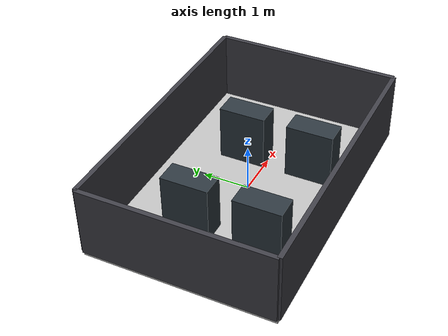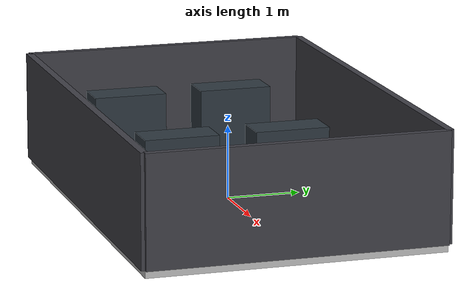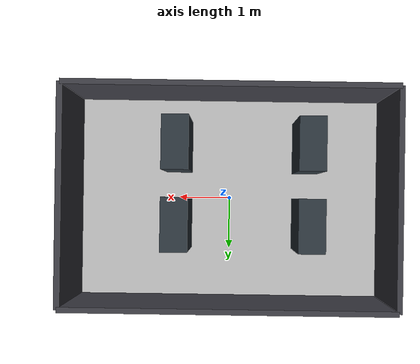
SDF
<?xml version='1.0' encoding='utf-8'?>
<sdf version="1.9">
  <world name="basic_warehouse">
    <gravity>0 0 -9.8</gravity>
    <light name="sun" type="directional">
      <pose>0 0 10 0 0 0</pose>
      <diffuse>0.8 0.8 0.8 1</diffuse>
      <direction>-0.5 0.2 -1</direction>
    </light>
    <model name="floor">
      <static>true</static>
      <pose>0 0 -0.05 0 0 0</pose>
      <link name="link">
        <collision name="collision">
          <geometry>
            <box>
              <size>6.0 4.0 0.1</size>
            </box>
          </geometry>
        </collision>
        <visual name="visual">
          <geometry>
            <box>
              <size>6.0 4.0 0.1</size>
            </box>
          </geometry>
          <material>
            <ambient>0.75 0.75 0.75 1</ambient>
            <diffuse>0.75 0.75 0.75 1</diffuse>
          </material>
        </visual>
      </link>
    </model>
    <model name="north_wall">
      <static>true</static>
      <pose>0 2.0 0.75 0 0 0</pose>
      <link name="link">
        <collision name="collision">
          <geometry>
            <box>
              <size>6.0 0.1 1.5</size>
            </box>
          </geometry>
        </collision>
        <visual name="visual">
          <geometry>
            <box>
              <size>6.0 0.1 1.5</size>
            </box>
          </geometry>
          <material>
            <ambient>0.25 0.25 0.28 1</ambient>
            <diffuse>0.25 0.25 0.28 1</diffuse>
          </material>
        </visual>
      </link>
    </model>
    <model name="south_wall">
      <static>true</static>
      <pose>0 -2.0 0.75 0 0 0</pose>
      <link name="link">
        <collision name="collision">
          <geometry>
            <box>
              <size>6.0 0.1 1.5</size>
            </box>
          </geometry>
        </collision>
        <visual name="visual">
          <geometry>
            <box>
              <size>6.0 0.1 1.5</size>
            </box>
          </geometry>
          <material>
            <ambient>0.25 0.25 0.28 1</ambient>
            <diffuse>0.25 0.25 0.28 1</diffuse>
          </material>
        </visual>
      </link>
    </model>
    <model name="east_wall">
      <static>true</static>
      <pose>3.0 0 0.75 0 0 0</pose>
      <link name="link">
        <collision name="collision">
          <geometry>
            <box>
              <size>0.1 4.0 1.5</size>
            </box>
          </geometry>
        </collision>
        <visual name="visual">
          <geometry>
            <box>
              <size>0.1 4.0 1.5</size>
            </box>
          </geometry>
          <material>
            <ambient>0.25 0.25 0.28 1</ambient>
            <diffuse>0.25 0.25 0.28 1</diffuse>
          </material>
        </visual>
      </link>
    </model>
    <model name="west_wall">
      <static>true</static>
      <pose>-3.0 0 0.75 0 0 0</pose>
      <link name="link">
        <collision name="collision">
          <geometry>
            <box>
              <size>0.1 4.0 1.5</size>
            </box>
          </geometry>
        </collision>
        <visual name="visual">
          <geometry>
            <box>
              <size>0.1 4.0 1.5</size>
            </box>
          </geometry>
          <material>
            <ambient>0.25 0.25 0.28 1</ambient>
            <diffuse>0.25 0.25 0.28 1</diffuse>
          </material>
        </visual>
      </link>
    </model>
    <model name="shelf_A1">
      <static>true</static>
      <pose>-1.5 -1.0 0.6 0 0 0.0</pose>
      <link name="link">
        <collision name="collision">
          <geometry>
            <box>
              <size>0.5 1.0 1.2</size>
            </box>
          </geometry>
        </collision>
        <visual name="visual">
          <geometry>
            <box>
              <size>0.5 1.0 1.2</size>
            </box>
          </geometry>
          <material>
            <ambient>0.18 0.22 0.25 1</ambient>
            <diffuse>0.18 0.22 0.25 1</diffuse>
          </material>
        </visual>
      </link>
    </model>
    <model name="shelf_A2">
      <static>true</static>
      <pose>-1.5 0.5 0.6 0 0 0.0</pose>
      <link name="link">
        <collision name="collision">
          <geometry>
            <box>
              <size>0.5 1.0 1.2</size>
            </box>
          </geometry>
        </collision>
        <visual name="visual">
          <geometry>
            <box>
              <size>0.5 1.0 1.2</size>
            </box>
          </geometry>
          <material>
            <ambient>0.18 0.22 0.25 1</ambient>
            <diffuse>0.18 0.22 0.25 1</diffuse>
          </material>
        </visual>
      </link>
    </model>
    <model name="shelf_B1">
      <static>true</static>
      <pose>1.0 -1.0 0.6 0 0 3.14</pose>
      <link name="link">
        <collision name="collision">
          <geometry>
            <box>
              <size>0.5 1.0 1.2</size>
            </box>
          </geometry>
        </collision>
        <visual name="visual">
          <geometry>
            <box>
              <size>0.5 1.0 1.2</size>
            </box>
          </geometry>
          <material>
            <ambient>0.18 0.22 0.25 1</ambient>
            <diffuse>0.18 0.22 0.25 1</diffuse>
          </material>
        </visual>
      </link>
    </model>
    <model name="shelf_B2">
      <static>true</static>
      <pose>1.0 0.5 0.6 0 0 3.14</pose>
      <link name="link">
        <collision name="collision">
          <geometry>
            <box>
              <size>0.5 1.0 1.2</size>
            </box>
          </geometry>
        </collision>
        <visual name="visual">
          <geometry>
            <box>
              <size>0.5 1.0 1.2</size>
            </box>
          </geometry>
          <material>
            <ambient>0.18 0.22 0.25 1</ambient>
            <diffuse>0.18 0.22 0.25 1</diffuse>
          </material>
        </visual>
      </link>
    </model>
  </world>
</sdf>
